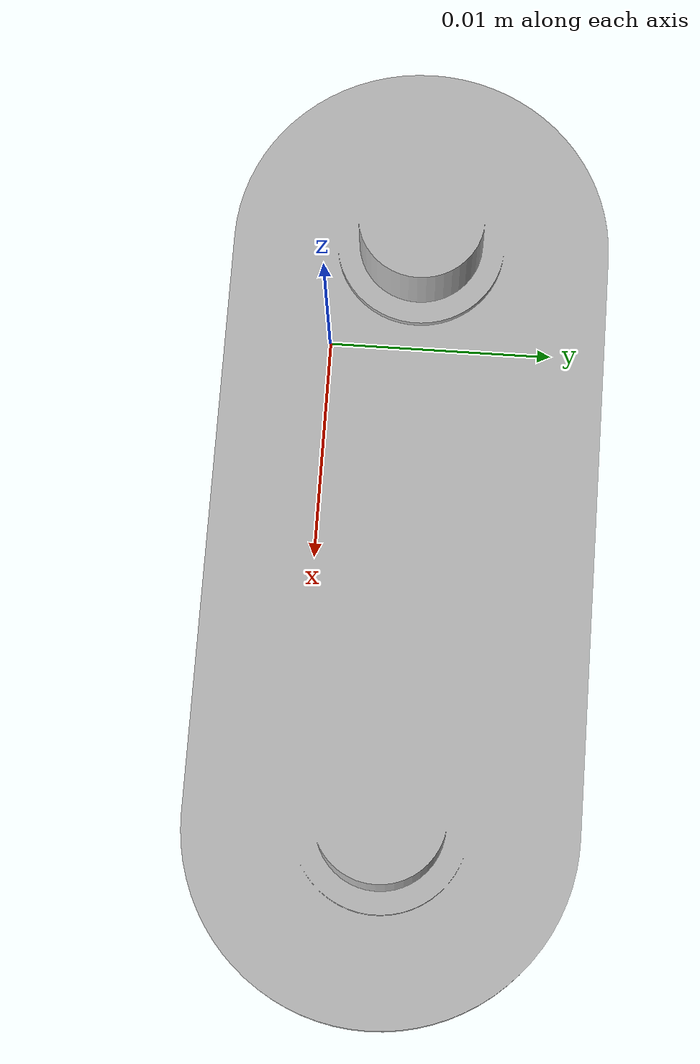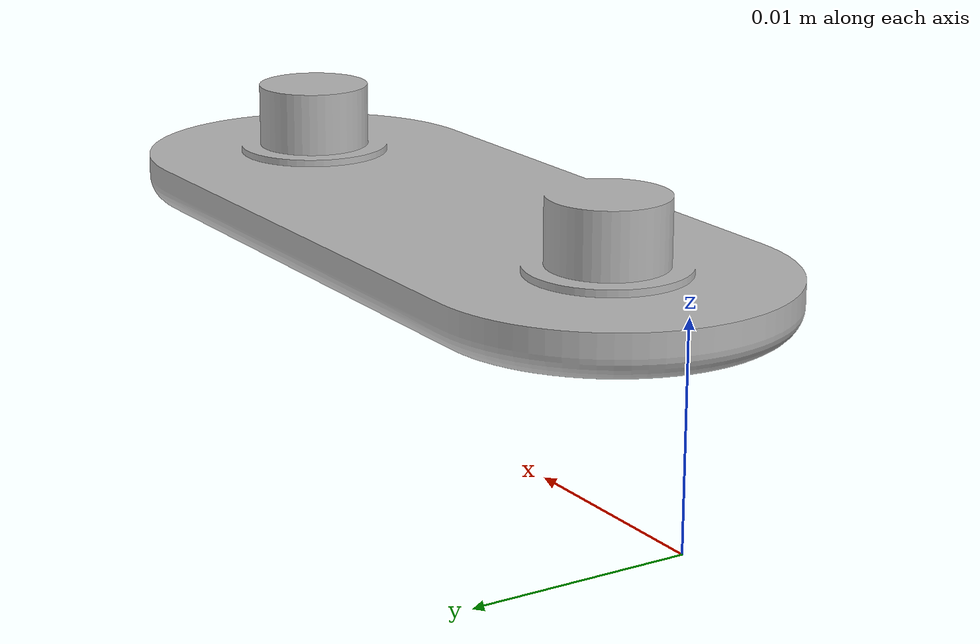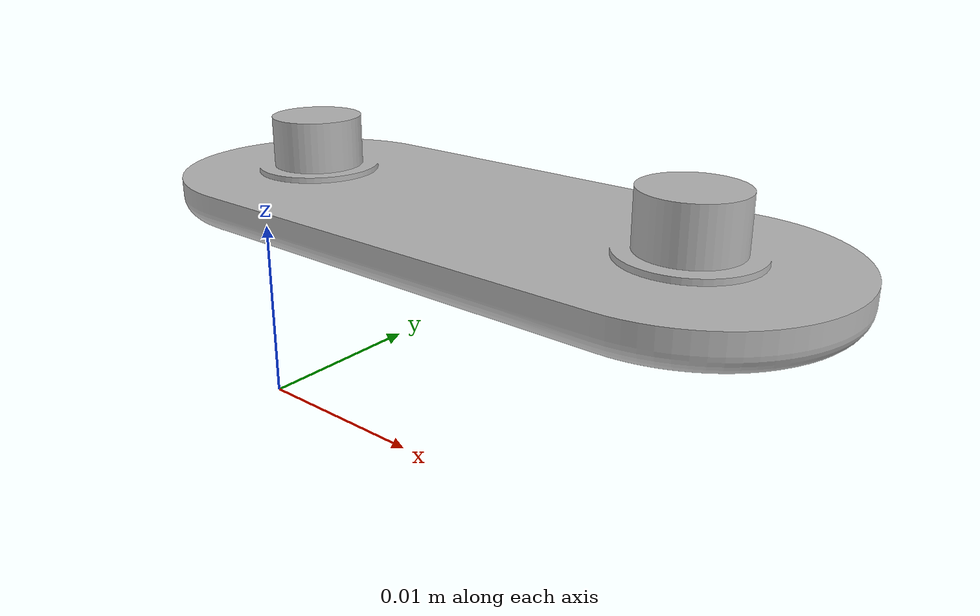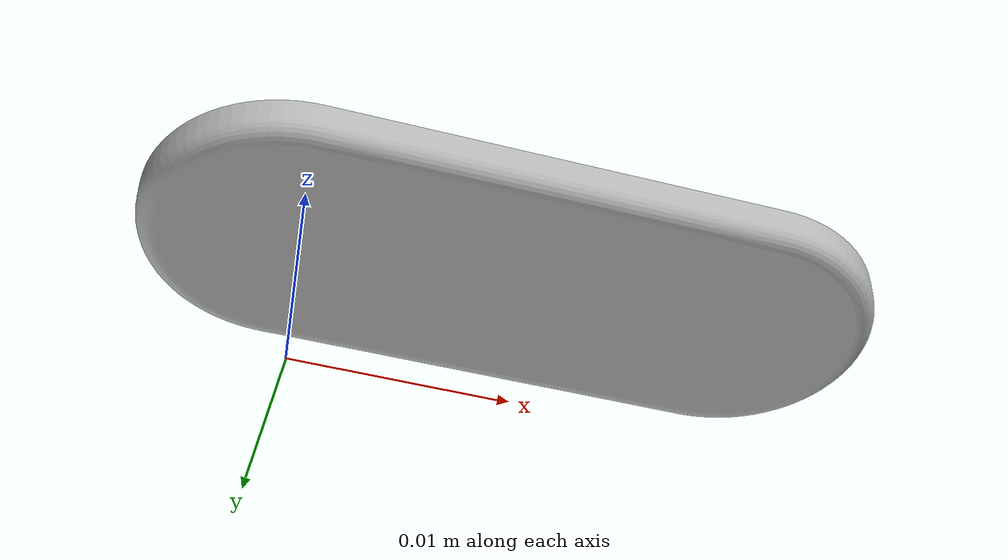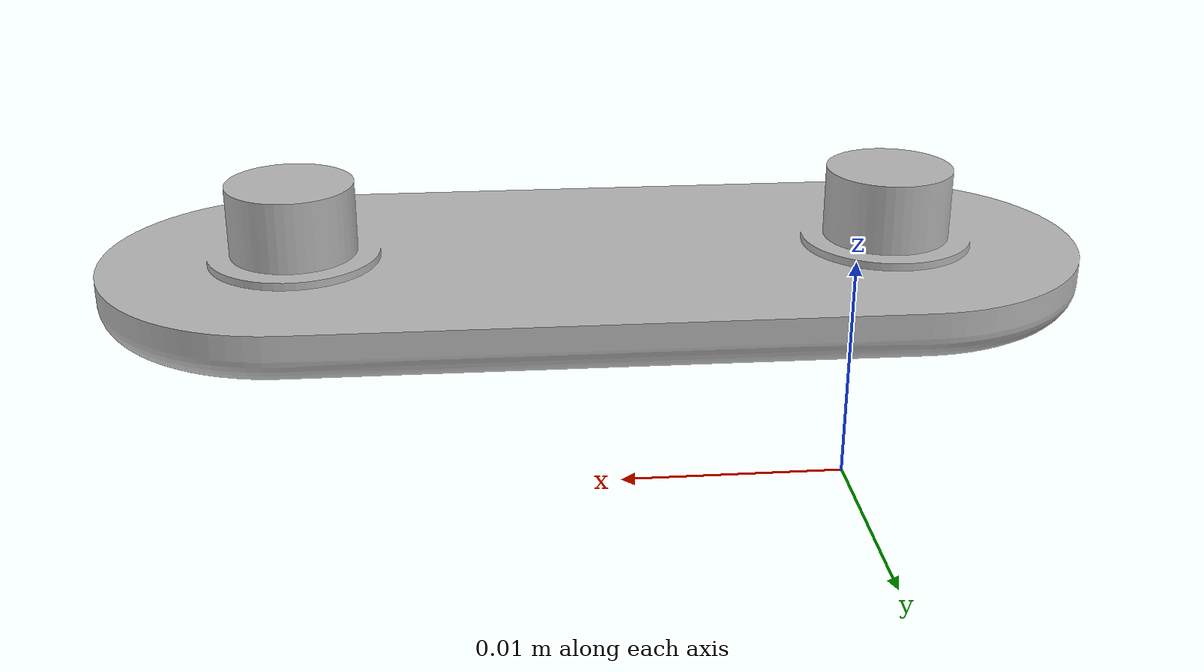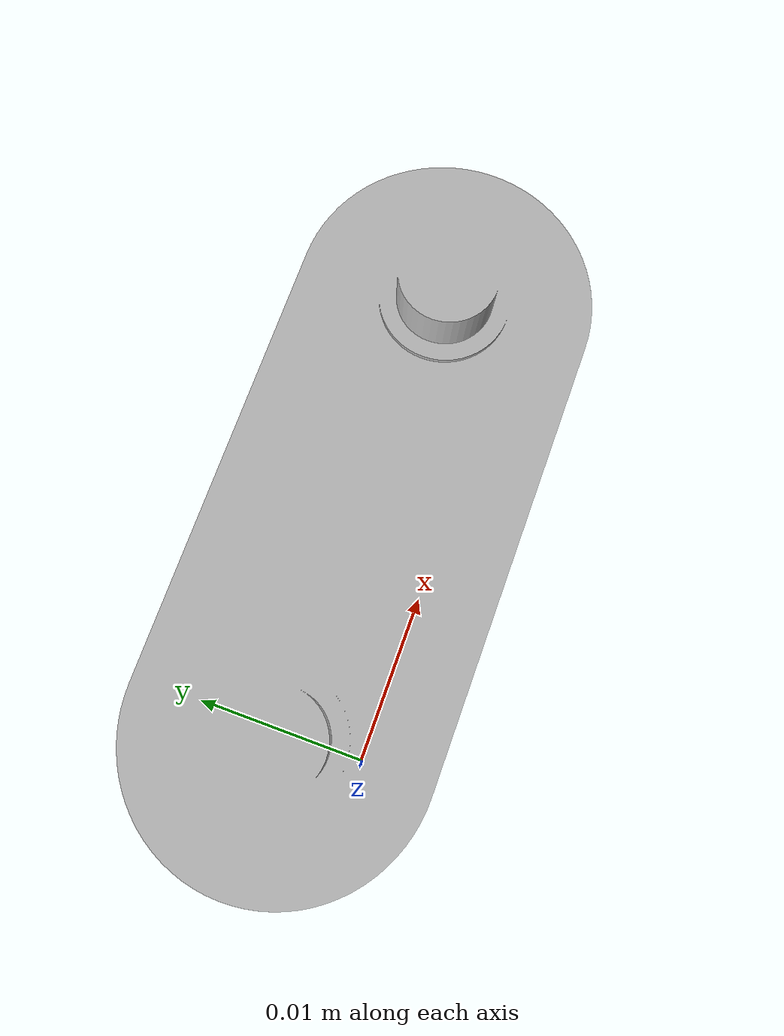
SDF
<?xml version="1.0" ?>
<sdf version="1.5">
  <model name="top_casing">
    <static>false</static>
    <link name="link">
      <collision name="collision">
        <geometry>
          <mesh>
            <scale>0.001 0.001 0.001</scale>
            <uri>model://top_casing/meshes/top_casing.dae</uri>
          </mesh>
        </geometry>
      </collision>
      <visual name="visual">
        <geometry>
          <mesh>
            <scale>0.001 0.001 0.001</scale>
            <uri>model://top_casing/meshes/top_casing.dae</uri>
          </mesh>
        </geometry>
      </visual>
    </link>
  </model>
</sdf>
